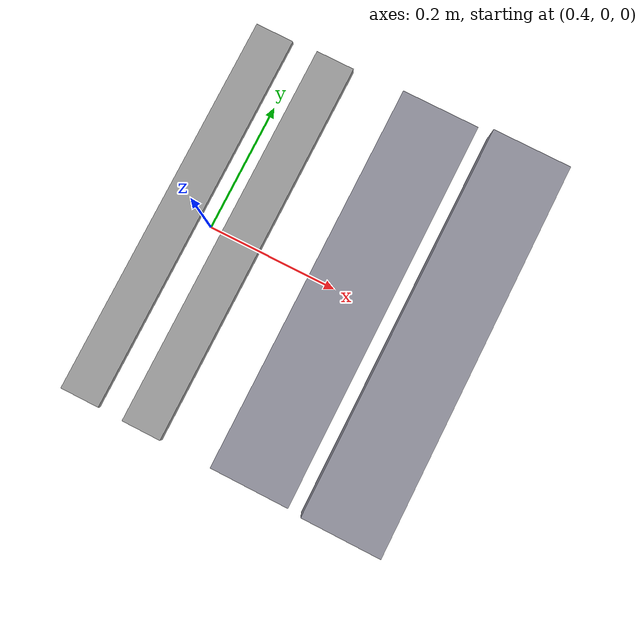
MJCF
<mujoco model="puppy_obstacles">
  <!-- 교재가 제공한 scene.xml에 들어 있던 장애물이다. 교재 안내대로 초기
       테스트에서는 빼 두고, 보행을 붙일 때 scene.xml에서 include하면 된다.
       원본은 로봇 크기(몸통 0.1 m)에 비해 과하게 커서 높이를 줄였다. -->
  <worldbody>
    <geom name="bump_1" pos="0.35 0 0.006" type="box" size="0.03 0.30 0.006" rgba="0.6 0.6 0.6 1"/>
    <geom name="bump_2" pos="0.45 0 0.010" type="box" size="0.03 0.30 0.010" rgba="0.6 0.6 0.6 1"/>
    <geom name="step_1" pos="0.62 0 0.015" type="box" size="0.06 0.30 0.015" rgba="0.55 0.55 0.6 1"/>
    <geom name="step_2" pos="0.76 0 0.025" type="box" size="0.06 0.30 0.025" rgba="0.55 0.55 0.6 1"/>
  </worldbody>
</mujoco>
